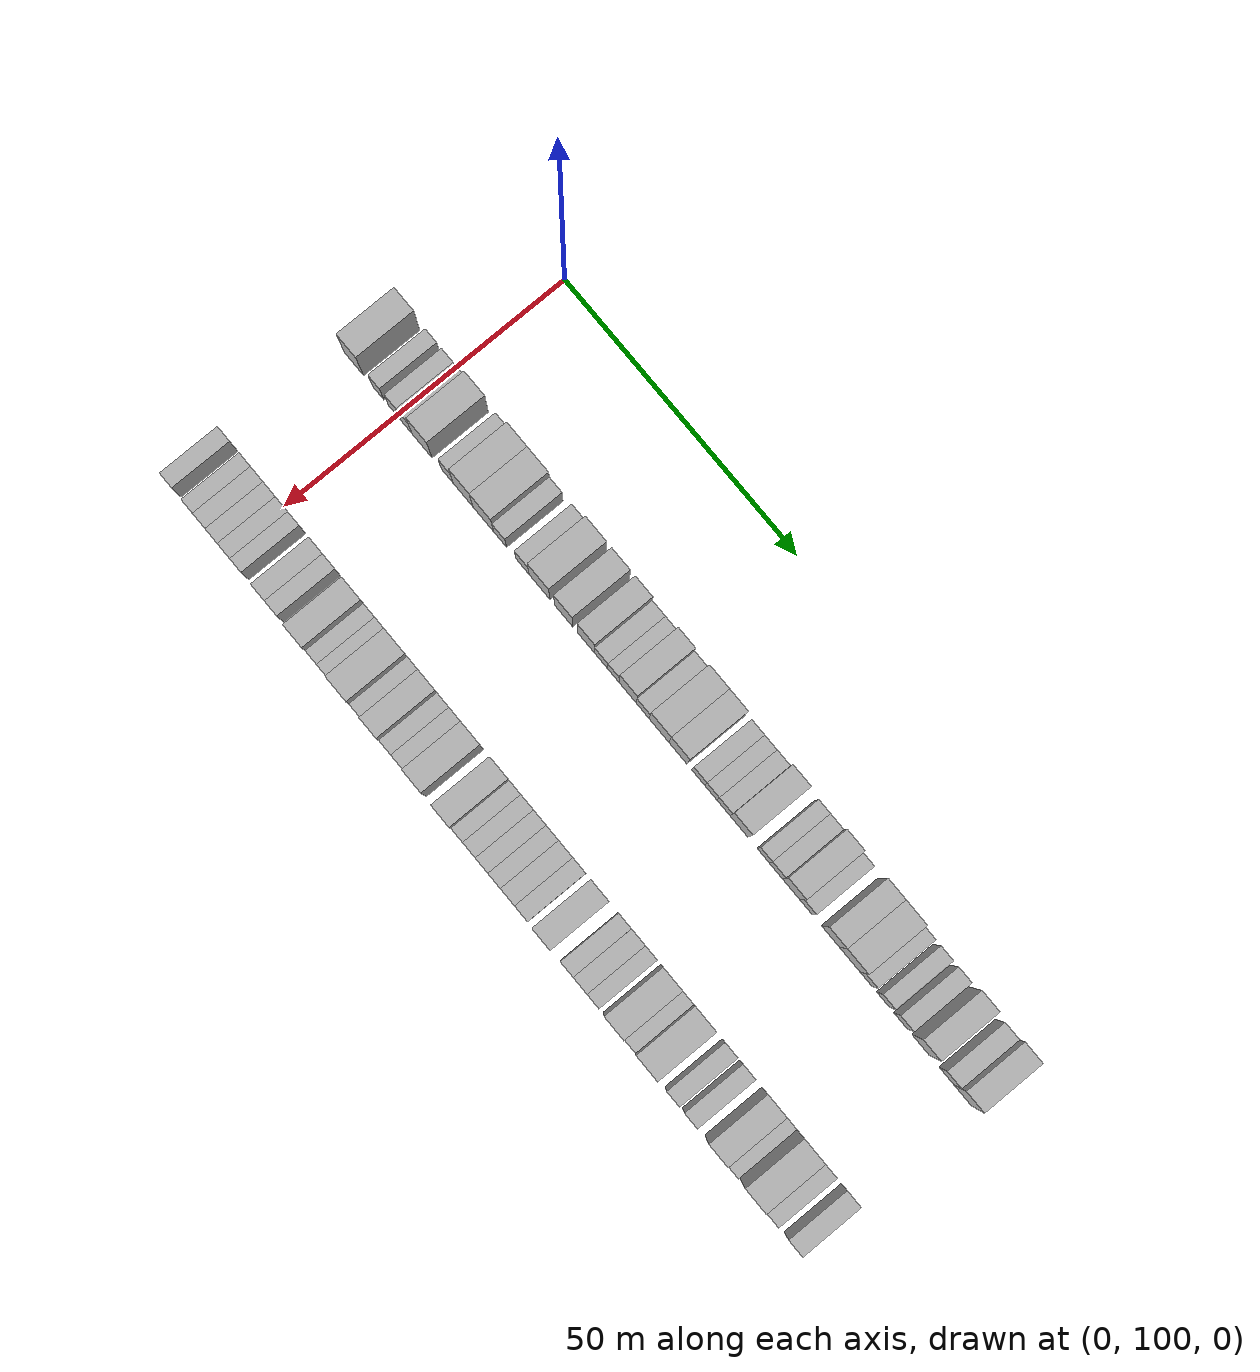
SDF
<sdf version="1.6">
 <world name="default">
  <model name="building_64">
   <static>1</static>
   <pose>25.0000 90.6085 0 0.000000 0.000000 0.000000</pose>
   <link name="link">
    <pose>0 0 4.50 0 0 0</pose>
    <collision name="collision"><geometry><box><size>10.0000 4.1637 9.0000</size></box></geometry></collision>
    <visual name="visual">
     <cast_shadows>0</cast_shadows>
     <geometry><box><size>10.0000 4.1637 9.0000</size></box></geometry>
     <material>
      <script>
       <uri>model://HANNAS_wall/materials/scripts</uri>
       <uri>model://HANNAS_wall/materials/textures</uri>
       <name>vrc/HANNAS_wall</name>
      </script>
     </material>
    </visual>
   </link>
  </model>
  <model name="building_65">
   <static>1</static>
   <pose>25.0000 95.9284 0 0.000000 0.000000 0.000000</pose>
   <link name="link">
    <pose>0 0 3.00 0 0 0</pose>
    <collision name="collision"><geometry><box><size>10.0000 2.4761 6.0000</size></box></geometry></collision>
    <visual name="visual">
     <cast_shadows>0</cast_shadows>
     <geometry><box><size>10.0000 2.4761 6.0000</size></box></geometry>
     <material>
      <script>
       <uri>model://HANNAS_wall/materials/scripts</uri>
       <uri>model://HANNAS_wall/materials/textures</uri>
       <name>vrc/HANNAS_wall</name>
      </script>
     </material>
    </visual>
   </link>
  </model>
  <model name="building_66">
   <static>1</static>
   <pose>25.0000 99.4283 0 0.000000 0.000000 0.000000</pose>
   <link name="link">
    <pose>0 0 3.00 0 0 0</pose>
    <collision name="collision"><geometry><box><size>10.0000 2.5238 6.0000</size></box></geometry></collision>
    <visual name="visual">
     <cast_shadows>0</cast_shadows>
     <geometry><box><size>10.0000 2.5238 6.0000</size></box></geometry>
     <material>
      <script>
       <uri>model://HANNAS_wall/materials/scripts</uri>
       <uri>model://HANNAS_wall/materials/textures</uri>
       <name>vrc/HANNAS_wall</name>
      </script>
     </material>
    </visual>
   </link>
  </model>
  <model name="building_67">
   <static>1</static>
   <pose>25.0000 101.9877 0 0.000000 0.000000 0.000000</pose>
   <link name="link">
    <pose>0 0 3.00 0 0 0</pose>
    <collision name="collision"><geometry><box><size>10.0000 2.5949 6.0000</size></box></geometry></collision>
    <visual name="visual">
     <cast_shadows>0</cast_shadows>
     <geometry><box><size>10.0000 2.5949 6.0000</size></box></geometry>
     <material>
      <script>
       <uri>model://HANNAS_wall/materials/scripts</uri>
       <uri>model://HANNAS_wall/materials/textures</uri>
       <name>vrc/HANNAS_wall</name>
      </script>
     </material>
    </visual>
   </link>
  </model>
  <model name="building_68">
   <static>1</static>
   <pose>25.0000 105.4654 0 0.000000 0.000000 0.000000</pose>
   <link name="link">
    <pose>0 0 4.50 0 0 0</pose>
    <collision name="collision"><geometry><box><size>10.0000 4.3605 9.0000</size></box></geometry></collision>
    <visual name="visual">
     <cast_shadows>0</cast_shadows>
     <geometry><box><size>10.0000 4.3605 9.0000</size></box></geometry>
     <material>
      <script>
       <uri>model://HANNAS_wall/materials/scripts</uri>
       <uri>model://HANNAS_wall/materials/textures</uri>
       <name>vrc/HANNAS_wall</name>
      </script>
     </material>
    </visual>
   </link>
  </model>
  <model name="building_69">
   <static>1</static>
   <pose>25.0000 110.9525 0 0.000000 0.000000 0.000000</pose>
   <link name="link">
    <pose>0 0 3.00 0 0 0</pose>
    <collision name="collision"><geometry><box><size>10.0000 2.6136 6.0000</size></box></geometry></collision>
    <visual name="visual">
     <cast_shadows>0</cast_shadows>
     <geometry><box><size>10.0000 2.6136 6.0000</size></box></geometry>
     <material>
      <script>
       <uri>model://HANNAS_wall/materials/scripts</uri>
       <uri>model://HANNAS_wall/materials/textures</uri>
       <name>vrc/HANNAS_wall</name>
      </script>
     </material>
    </visual>
   </link>
  </model>
  <model name="building_70">
   <static>1</static>
   <pose>25.0000 114.4066 0 0.000000 0.000000 0.000000</pose>
   <link name="link">
    <pose>0 0 4.50 0 0 0</pose>
    <collision name="collision"><geometry><box><size>10.0000 4.2947 9.0000</size></box></geometry></collision>
    <visual name="visual">
     <cast_shadows>0</cast_shadows>
     <geometry><box><size>10.0000 4.2947 9.0000</size></box></geometry>
     <material>
      <script>
       <uri>model://HANNAS_wall/materials/scripts</uri>
       <uri>model://HANNAS_wall/materials/textures</uri>
       <name>vrc/HANNAS_wall</name>
      </script>
     </material>
    </visual>
   </link>
  </model>
  <model name="building_71">
   <static>1</static>
   <pose>25.0000 118.7999 0 0.000000 0.000000 0.000000</pose>
   <link name="link">
    <pose>0 0 4.50 0 0 0</pose>
    <collision name="collision"><geometry><box><size>10.0000 4.4918 9.0000</size></box></geometry></collision>
    <visual name="visual">
     <cast_shadows>0</cast_shadows>
     <geometry><box><size>10.0000 4.4918 9.0000</size></box></geometry>
     <material>
      <script>
       <uri>model://HANNAS_wall/materials/scripts</uri>
       <uri>model://HANNAS_wall/materials/textures</uri>
       <name>vrc/HANNAS_wall</name>
      </script>
     </material>
    </visual>
   </link>
  </model>
  <model name="building_72">
   <static>1</static>
   <pose>25.0000 122.4167 0 0.000000 0.000000 0.000000</pose>
   <link name="link">
    <pose>0 0 3.00 0 0 0</pose>
    <collision name="collision"><geometry><box><size>10.0000 2.7419 6.0000</size></box></geometry></collision>
    <visual name="visual">
     <cast_shadows>0</cast_shadows>
     <geometry><box><size>10.0000 2.7419 6.0000</size></box></geometry>
     <material>
      <script>
       <uri>model://HANNAS_wall/materials/scripts</uri>
       <uri>model://HANNAS_wall/materials/textures</uri>
       <name>vrc/HANNAS_wall</name>
      </script>
     </material>
    </visual>
   </link>
  </model>
  <model name="building_73">
   <static>1</static>
   <pose>25.0000 127.2247 0 0.000000 0.000000 0.000000</pose>
   <link name="link">
    <pose>0 0 3.00 0 0 0</pose>
    <collision name="collision"><geometry><box><size>10.0000 2.8741 6.0000</size></box></geometry></collision>
    <visual name="visual">
     <cast_shadows>0</cast_shadows>
     <geometry><box><size>10.0000 2.8741 6.0000</size></box></geometry>
     <material>
      <script>
       <uri>model://HANNAS_wall/materials/scripts</uri>
       <uri>model://HANNAS_wall/materials/textures</uri>
       <name>vrc/HANNAS_wall</name>
      </script>
     </material>
    </visual>
   </link>
  </model>
  <model name="building_74">
   <static>1</static>
   <pose>25.0000 130.8982 0 0.000000 0.000000 0.000000</pose>
   <link name="link">
    <pose>0 0 4.50 0 0 0</pose>
    <collision name="collision"><geometry><box><size>10.0000 4.4728 9.0000</size></box></geometry></collision>
    <visual name="visual">
     <cast_shadows>0</cast_shadows>
     <geometry><box><size>10.0000 4.4728 9.0000</size></box></geometry>
     <material>
      <script>
       <uri>model://HANNAS_wall/materials/scripts</uri>
       <uri>model://HANNAS_wall/materials/textures</uri>
       <name>vrc/HANNAS_wall</name>
      </script>
     </material>
    </visual>
   </link>
  </model>
  <model name="building_75">
   <static>1</static>
   <pose>25.0000 136.0875 0 0.000000 0.000000 0.000000</pose>
   <link name="link">
    <pose>0 0 4.50 0 0 0</pose>
    <collision name="collision"><geometry><box><size>10.0000 3.9060 9.0000</size></box></geometry></collision>
    <visual name="visual">
     <cast_shadows>0</cast_shadows>
     <geometry><box><size>10.0000 3.9060 9.0000</size></box></geometry>
     <material>
      <script>
       <uri>model://HANNAS_wall/materials/scripts</uri>
       <uri>model://HANNAS_wall/materials/textures</uri>
       <name>vrc/HANNAS_wall</name>
      </script>
     </material>
    </visual>
   </link>
  </model>
  <model name="building_76">
   <static>1</static>
   <pose>25.0000 140.8769 0 0.000000 0.000000 0.000000</pose>
   <link name="link">
    <pose>0 0 4.50 0 0 0</pose>
    <collision name="collision"><geometry><box><size>10.0000 3.6727 9.0000</size></box></geometry></collision>
    <visual name="visual">
     <cast_shadows>0</cast_shadows>
     <geometry><box><size>10.0000 3.6727 9.0000</size></box></geometry>
     <material>
      <script>
       <uri>model://HANNAS_wall/materials/scripts</uri>
       <uri>model://HANNAS_wall/materials/textures</uri>
       <name>vrc/HANNAS_wall</name>
      </script>
     </material>
    </visual>
   </link>
  </model>
  <model name="building_77">
   <static>1</static>
   <pose>25.0000 144.0994 0 0.000000 0.000000 0.000000</pose>
   <link name="link">
    <pose>0 0 3.00 0 0 0</pose>
    <collision name="collision"><geometry><box><size>10.0000 2.7723 6.0000</size></box></geometry></collision>
    <visual name="visual">
     <cast_shadows>0</cast_shadows>
     <geometry><box><size>10.0000 2.7723 6.0000</size></box></geometry>
     <material>
      <script>
       <uri>model://HANNAS_wall/materials/scripts</uri>
       <uri>model://HANNAS_wall/materials/textures</uri>
       <name>vrc/HANNAS_wall</name>
      </script>
     </material>
    </visual>
   </link>
  </model>
  <model name="building_78">
   <static>1</static>
   <pose>25.0000 146.6974 0 0.000000 0.000000 0.000000</pose>
   <link name="link">
    <pose>0 0 3.00 0 0 0</pose>
    <collision name="collision"><geometry><box><size>10.0000 2.4238 6.0000</size></box></geometry></collision>
    <visual name="visual">
     <cast_shadows>0</cast_shadows>
     <geometry><box><size>10.0000 2.4238 6.0000</size></box></geometry>
     <material>
      <script>
       <uri>model://HANNAS_wall/materials/scripts</uri>
       <uri>model://HANNAS_wall/materials/textures</uri>
       <name>vrc/HANNAS_wall</name>
      </script>
     </material>
    </visual>
   </link>
  </model>
  <model name="building_79">
   <static>1</static>
   <pose>25.0000 149.7253 0 0.000000 0.000000 0.000000</pose>
   <link name="link">
    <pose>0 0 4.50 0 0 0</pose>
    <collision name="collision"><geometry><box><size>10.0000 3.6320 9.0000</size></box></geometry></collision>
    <visual name="visual">
     <cast_shadows>0</cast_shadows>
     <geometry><box><size>10.0000 3.6320 9.0000</size></box></geometry>
     <material>
      <script>
       <uri>model://HANNAS_wall/materials/scripts</uri>
       <uri>model://HANNAS_wall/materials/textures</uri>
       <name>vrc/HANNAS_wall</name>
      </script>
     </material>
    </visual>
   </link>
  </model>
  <model name="building_80">
   <static>1</static>
   <pose>25.0000 152.9375 0 0.000000 0.000000 0.000000</pose>
   <link name="link">
    <pose>0 0 3.00 0 0 0</pose>
    <collision name="collision"><geometry><box><size>10.0000 2.7925 6.0000</size></box></geometry></collision>
    <visual name="visual">
     <cast_shadows>0</cast_shadows>
     <geometry><box><size>10.0000 2.7925 6.0000</size></box></geometry>
     <material>
      <script>
       <uri>model://HANNAS_wall/materials/scripts</uri>
       <uri>model://HANNAS_wall/materials/textures</uri>
       <name>vrc/HANNAS_wall</name>
      </script>
     </material>
    </visual>
   </link>
  </model>
  <model name="building_81">
   <static>1</static>
   <pose>25.0000 156.4255 0 0.000000 0.000000 0.000000</pose>
   <link name="link">
    <pose>0 0 4.50 0 0 0</pose>
    <collision name="collision"><geometry><box><size>10.0000 4.1835 9.0000</size></box></geometry></collision>
    <visual name="visual">
     <cast_shadows>0</cast_shadows>
     <geometry><box><size>10.0000 4.1835 9.0000</size></box></geometry>
     <material>
      <script>
       <uri>model://HANNAS_wall/materials/scripts</uri>
       <uri>model://HANNAS_wall/materials/textures</uri>
       <name>vrc/HANNAS_wall</name>
      </script>
     </material>
    </visual>
   </link>
  </model>
  <model name="building_82">
   <static>1</static>
   <pose>25.0000 160.4530 0 0.000000 0.000000 0.000000</pose>
   <link name="link">
    <pose>0 0 4.50 0 0 0</pose>
    <collision name="collision"><geometry><box><size>10.0000 3.8715 9.0000</size></box></geometry></collision>
    <visual name="visual">
     <cast_shadows>0</cast_shadows>
     <geometry><box><size>10.0000 3.8715 9.0000</size></box></geometry>
     <material>
      <script>
       <uri>model://HANNAS_wall/materials/scripts</uri>
       <uri>model://HANNAS_wall/materials/textures</uri>
       <name>vrc/HANNAS_wall</name>
      </script>
     </material>
    </visual>
   </link>
  </model>
  <model name="building_83">
   <static>1</static>
   <pose>25.0000 164.7507 0 0.000000 0.000000 0.000000</pose>
   <link name="link">
    <pose>0 0 3.00 0 0 0</pose>
    <collision name="collision"><geometry><box><size>10.0000 2.7239 6.0000</size></box></geometry></collision>
    <visual name="visual">
     <cast_shadows>0</cast_shadows>
     <geometry><box><size>10.0000 2.7239 6.0000</size></box></geometry>
     <material>
      <script>
       <uri>model://HANNAS_wall/materials/scripts</uri>
       <uri>model://HANNAS_wall/materials/textures</uri>
       <name>vrc/HANNAS_wall</name>
      </script>
     </material>
    </visual>
   </link>
  </model>
  <model name="building_84">
   <static>1</static>
   <pose>25.0000 167.3876 0 0.000000 0.000000 0.000000</pose>
   <link name="link">
    <pose>0 0 3.00 0 0 0</pose>
    <collision name="collision"><geometry><box><size>10.0000 2.5499 6.0000</size></box></geometry></collision>
    <visual name="visual">
     <cast_shadows>0</cast_shadows>
     <geometry><box><size>10.0000 2.5499 6.0000</size></box></geometry>
     <material>
      <script>
       <uri>model://HANNAS_wall/materials/scripts</uri>
       <uri>model://HANNAS_wall/materials/textures</uri>
       <name>vrc/HANNAS_wall</name>
      </script>
     </material>
    </visual>
   </link>
  </model>
  <model name="building_85">
   <static>1</static>
   <pose>25.0000 170.0419 0 0.000000 0.000000 0.000000</pose>
   <link name="link">
    <pose>0 0 3.00 0 0 0</pose>
    <collision name="collision"><geometry><box><size>10.0000 2.7588 6.0000</size></box></geometry></collision>
    <visual name="visual">
     <cast_shadows>0</cast_shadows>
     <geometry><box><size>10.0000 2.7588 6.0000</size></box></geometry>
     <material>
      <script>
       <uri>model://HANNAS_wall/materials/scripts</uri>
       <uri>model://HANNAS_wall/materials/textures</uri>
       <name>vrc/HANNAS_wall</name>
      </script>
     </material>
    </visual>
   </link>
  </model>
  <model name="building_86">
   <static>1</static>
   <pose>25.0000 173.3113 0 0.000000 0.000000 0.000000</pose>
   <link name="link">
    <pose>0 0 4.50 0 0 0</pose>
    <collision name="collision"><geometry><box><size>10.0000 3.7800 9.0000</size></box></geometry></collision>
    <visual name="visual">
     <cast_shadows>0</cast_shadows>
     <geometry><box><size>10.0000 3.7800 9.0000</size></box></geometry>
     <material>
      <script>
       <uri>model://HANNAS_wall/materials/scripts</uri>
       <uri>model://HANNAS_wall/materials/textures</uri>
       <name>vrc/HANNAS_wall</name>
      </script>
     </material>
    </visual>
   </link>
  </model>
  <model name="building_87">
   <static>1</static>
   <pose>25.0000 178.4202 0 0.000000 0.000000 0.000000</pose>
   <link name="link">
    <pose>0 0 3.00 0 0 0</pose>
    <collision name="collision"><geometry><box><size>10.0000 2.4378 6.0000</size></box></geometry></collision>
    <visual name="visual">
     <cast_shadows>0</cast_shadows>
     <geometry><box><size>10.0000 2.4378 6.0000</size></box></geometry>
     <material>
      <script>
       <uri>model://HANNAS_wall/materials/scripts</uri>
       <uri>model://HANNAS_wall/materials/textures</uri>
       <name>vrc/HANNAS_wall</name>
      </script>
     </material>
    </visual>
   </link>
  </model>
  <model name="building_88">
   <static>1</static>
   <pose>25.0000 181.0254 0 0.000000 0.000000 0.000000</pose>
   <link name="link">
    <pose>0 0 3.00 0 0 0</pose>
    <collision name="collision"><geometry><box><size>10.0000 2.7725 6.0000</size></box></geometry></collision>
    <visual name="visual">
     <cast_shadows>0</cast_shadows>
     <geometry><box><size>10.0000 2.7725 6.0000</size></box></geometry>
     <material>
      <script>
       <uri>model://HANNAS_wall/materials/scripts</uri>
       <uri>model://HANNAS_wall/materials/textures</uri>
       <name>vrc/HANNAS_wall</name>
      </script>
     </material>
    </visual>
   </link>
  </model>
  <model name="building_89">
   <static>1</static>
   <pose>25.0000 184.2746 0 0.000000 0.000000 0.000000</pose>
   <link name="link">
    <pose>0 0 4.50 0 0 0</pose>
    <collision name="collision"><geometry><box><size>10.0000 3.7258 9.0000</size></box></geometry></collision>
    <visual name="visual">
     <cast_shadows>0</cast_shadows>
     <geometry><box><size>10.0000 3.7258 9.0000</size></box></geometry>
     <material>
      <script>
       <uri>model://HANNAS_wall/materials/scripts</uri>
       <uri>model://HANNAS_wall/materials/textures</uri>
       <name>vrc/HANNAS_wall</name>
      </script>
     </material>
    </visual>
   </link>
  </model>
  <model name="building_90">
   <static>1</static>
   <pose>25.0000 187.4155 0 0.000000 0.000000 0.000000</pose>
   <link name="link">
    <pose>0 0 3.00 0 0 0</pose>
    <collision name="collision"><geometry><box><size>10.0000 2.5561 6.0000</size></box></geometry></collision>
    <visual name="visual">
     <cast_shadows>0</cast_shadows>
     <geometry><box><size>10.0000 2.5561 6.0000</size></box></geometry>
     <material>
      <script>
       <uri>model://HANNAS_wall/materials/scripts</uri>
       <uri>model://HANNAS_wall/materials/textures</uri>
       <name>vrc/HANNAS_wall</name>
      </script>
     </material>
    </visual>
   </link>
  </model>
  <model name="building_91">
   <static>1</static>
   <pose>25.0000 192.5272 0 0.000000 0.000000 0.000000</pose>
   <link name="link">
    <pose>0 0 4.50 0 0 0</pose>
    <collision name="collision"><geometry><box><size>10.0000 3.6672 9.0000</size></box></geometry></collision>
    <visual name="visual">
     <cast_shadows>0</cast_shadows>
     <geometry><box><size>10.0000 3.6672 9.0000</size></box></geometry>
     <material>
      <script>
       <uri>model://HANNAS_wall/materials/scripts</uri>
       <uri>model://HANNAS_wall/materials/textures</uri>
       <name>vrc/HANNAS_wall</name>
      </script>
     </material>
    </visual>
   </link>
  </model>
  <model name="building_92">
   <static>1</static>
   <pose>25.0000 196.5375 0 0.000000 0.000000 0.000000</pose>
   <link name="link">
    <pose>0 0 4.50 0 0 0</pose>
    <collision name="collision"><geometry><box><size>10.0000 4.3534 9.0000</size></box></geometry></collision>
    <visual name="visual">
     <cast_shadows>0</cast_shadows>
     <geometry><box><size>10.0000 4.3534 9.0000</size></box></geometry>
     <material>
      <script>
       <uri>model://HANNAS_wall/materials/scripts</uri>
       <uri>model://HANNAS_wall/materials/textures</uri>
       <name>vrc/HANNAS_wall</name>
      </script>
     </material>
    </visual>
   </link>
  </model>
  <model name="building_93">
   <static>1</static>
   <pose>25.0000 199.9641 0 0.000000 0.000000 0.000000</pose>
   <link name="link">
    <pose>0 0 3.00 0 0 0</pose>
    <collision name="collision"><geometry><box><size>10.0000 2.5000 6.0000</size></box></geometry></collision>
    <visual name="visual">
     <cast_shadows>0</cast_shadows>
     <geometry><box><size>10.0000 2.5000 6.0000</size></box></geometry>
     <material>
      <script>
       <uri>model://HANNAS_wall/materials/scripts</uri>
       <uri>model://HANNAS_wall/materials/textures</uri>
       <name>vrc/HANNAS_wall</name>
      </script>
     </material>
    </visual>
   </link>
  </model>
  <model name="building_94">
   <static>1</static>
   <pose>25.0000 203.5080 0 0.000000 0.000000 0.000000</pose>
   <link name="link">
    <pose>0 0 3.00 0 0 0</pose>
    <collision name="collision"><geometry><box><size>10.0000 2.5877 6.0000</size></box></geometry></collision>
    <visual name="visual">
     <cast_shadows>0</cast_shadows>
     <geometry><box><size>10.0000 2.5877 6.0000</size></box></geometry>
     <material>
      <script>
       <uri>model://HANNAS_wall/materials/scripts</uri>
       <uri>model://HANNAS_wall/materials/textures</uri>
       <name>vrc/HANNAS_wall</name>
      </script>
     </material>
    </visual>
   </link>
  </model>
  <model name="building_95">
   <static>1</static>
   <pose>25.0000 207.1830 0 0.000000 0.000000 0.000000</pose>
   <link name="link">
    <pose>0 0 3.00 0 0 0</pose>
    <collision name="collision"><geometry><box><size>10.0000 2.7625 6.0000</size></box></geometry></collision>
    <visual name="visual">
     <cast_shadows>0</cast_shadows>
     <geometry><box><size>10.0000 2.7625 6.0000</size></box></geometry>
     <material>
      <script>
       <uri>model://HANNAS_wall/materials/scripts</uri>
       <uri>model://HANNAS_wall/materials/textures</uri>
       <name>vrc/HANNAS_wall</name>
      </script>
     </material>
    </visual>
   </link>
  </model>
  <model name="building_96">
   <static>1</static>
   <pose>25.0000 211.3825 0 0.000000 0.000000 0.000000</pose>
   <link name="link">
    <pose>0 0 4.50 0 0 0</pose>
    <collision name="collision"><geometry><box><size>10.0000 3.6365 9.0000</size></box></geometry></collision>
    <visual name="visual">
     <cast_shadows>0</cast_shadows>
     <geometry><box><size>10.0000 3.6365 9.0000</size></box></geometry>
     <material>
      <script>
       <uri>model://HANNAS_wall/materials/scripts</uri>
       <uri>model://HANNAS_wall/materials/textures</uri>
       <name>vrc/HANNAS_wall</name>
      </script>
     </material>
    </visual>
   </link>
  </model>
  <model name="building_97">
   <static>1</static>
   <pose>25.0000 216.6824 0 0.000000 0.000000 0.000000</pose>
   <link name="link">
    <pose>0 0 3.00 0 0 0</pose>
    <collision name="collision"><geometry><box><size>10.0000 2.9632 6.0000</size></box></geometry></collision>
    <visual name="visual">
     <cast_shadows>0</cast_shadows>
     <geometry><box><size>10.0000 2.9632 6.0000</size></box></geometry>
     <material>
      <script>
       <uri>model://HANNAS_wall/materials/scripts</uri>
       <uri>model://HANNAS_wall/materials/textures</uri>
       <name>vrc/HANNAS_wall</name>
      </script>
     </material>
    </visual>
   </link>
  </model>
  <model name="building_98">
   <static>1</static>
   <pose>25.0000 219.9802 0 0.000000 0.000000 0.000000</pose>
   <link name="link">
    <pose>0 0 4.50 0 0 0</pose>
    <collision name="collision"><geometry><box><size>10.0000 3.6325 9.0000</size></box></geometry></collision>
    <visual name="visual">
     <cast_shadows>0</cast_shadows>
     <geometry><box><size>10.0000 3.6325 9.0000</size></box></geometry>
     <material>
      <script>
       <uri>model://HANNAS_wall/materials/scripts</uri>
       <uri>model://HANNAS_wall/materials/textures</uri>
       <name>vrc/HANNAS_wall</name>
      </script>
     </material>
    </visual>
   </link>
  </model>
  <model name="building_181">
   <static>1</static>
   <pose>55.0000 88.5930 0 0.000000 0.000000 0.000000</pose>
   <link name="link">
    <pose>0 0 3.00 0 0 0</pose>
    <collision name="collision"><geometry><box><size>10.0000 2.6567 6.0000</size></box></geometry></collision>
    <visual name="visual">
     <cast_shadows>0</cast_shadows>
     <geometry><box><size>10.0000 2.6567 6.0000</size></box></geometry>
     <material>
      <script>
       <uri>model://HANNAS_wall/materials/scripts</uri>
       <uri>model://HANNAS_wall/materials/textures</uri>
       <name>vrc/HANNAS_wall</name>
      </script>
     </material>
    </visual>
   </link>
  </model>
  <model name="building_182">
   <static>1</static>
   <pose>55.0000 93.1367 0 0.000000 0.000000 0.000000</pose>
   <link name="link">
    <pose>0 0 3.00 0 0 0</pose>
    <collision name="collision"><geometry><box><size>10.0000 2.4307 6.0000</size></box></geometry></collision>
    <visual name="visual">
     <cast_shadows>0</cast_shadows>
     <geometry><box><size>10.0000 2.4307 6.0000</size></box></geometry>
     <material>
      <script>
       <uri>model://HANNAS_wall/materials/scripts</uri>
       <uri>model://HANNAS_wall/materials/textures</uri>
       <name>vrc/HANNAS_wall</name>
      </script>
     </material>
    </visual>
   </link>
  </model>
  <model name="building_183">
   <static>1</static>
   <pose>55.0000 95.7029 0 0.000000 0.000000 0.000000</pose>
   <link name="link">
    <pose>0 0 3.00 0 0 0</pose>
    <collision name="collision"><geometry><box><size>10.0000 2.7017 6.0000</size></box></geometry></collision>
    <visual name="visual">
     <cast_shadows>0</cast_shadows>
     <geometry><box><size>10.0000 2.7017 6.0000</size></box></geometry>
     <material>
      <script>
       <uri>model://HANNAS_wall/materials/scripts</uri>
       <uri>model://HANNAS_wall/materials/textures</uri>
       <name>vrc/HANNAS_wall</name>
      </script>
     </material>
    </visual>
   </link>
  </model>
  <model name="building_184">
   <static>1</static>
   <pose>55.0000 98.3659 0 0.000000 0.000000 0.000000</pose>
   <link name="link">
    <pose>0 0 3.00 0 0 0</pose>
    <collision name="collision"><geometry><box><size>10.0000 2.6243 6.0000</size></box></geometry></collision>
    <visual name="visual">
     <cast_shadows>0</cast_shadows>
     <geometry><box><size>10.0000 2.6243 6.0000</size></box></geometry>
     <material>
      <script>
       <uri>model://HANNAS_wall/materials/scripts</uri>
       <uri>model://HANNAS_wall/materials/textures</uri>
       <name>vrc/HANNAS_wall</name>
      </script>
     </material>
    </visual>
   </link>
  </model>
  <model name="building_185">
   <static>1</static>
   <pose>55.0000 101.0020 0 0.000000 0.000000 0.000000</pose>
   <link name="link">
    <pose>0 0 3.00 0 0 0</pose>
    <collision name="collision"><geometry><box><size>10.0000 2.6480 6.0000</size></box></geometry></collision>
    <visual name="visual">
     <cast_shadows>0</cast_shadows>
     <geometry><box><size>10.0000 2.6480 6.0000</size></box></geometry>
     <material>
      <script>
       <uri>model://HANNAS_wall/materials/scripts</uri>
       <uri>model://HANNAS_wall/materials/textures</uri>
       <name>vrc/HANNAS_wall</name>
      </script>
     </material>
    </visual>
   </link>
  </model>
  <model name="building_186">
   <static>1</static>
   <pose>55.0000 103.5491 0 0.000000 0.000000 0.000000</pose>
   <link name="link">
    <pose>0 0 3.00 0 0 0</pose>
    <collision name="collision"><geometry><box><size>10.0000 2.4462 6.0000</size></box></geometry></collision>
    <visual name="visual">
     <cast_shadows>0</cast_shadows>
     <geometry><box><size>10.0000 2.4462 6.0000</size></box></geometry>
     <material>
      <script>
       <uri>model://HANNAS_wall/materials/scripts</uri>
       <uri>model://HANNAS_wall/materials/textures</uri>
       <name>vrc/HANNAS_wall</name>
      </script>
     </material>
    </visual>
   </link>
  </model>
  <model name="building_187">
   <static>1</static>
   <pose>55.0000 108.2516 0 0.000000 0.000000 0.000000</pose>
   <link name="link">
    <pose>0 0 3.00 0 0 0</pose>
    <collision name="collision"><geometry><box><size>10.0000 2.9588 6.0000</size></box></geometry></collision>
    <visual name="visual">
     <cast_shadows>0</cast_shadows>
     <geometry><box><size>10.0000 2.9588 6.0000</size></box></geometry>
     <material>
      <script>
       <uri>model://HANNAS_wall/materials/scripts</uri>
       <uri>model://HANNAS_wall/materials/textures</uri>
       <name>vrc/HANNAS_wall</name>
      </script>
     </material>
    </visual>
   </link>
  </model>
  <model name="building_188">
   <static>1</static>
   <pose>55.0000 111.0674 0 0.000000 0.000000 0.000000</pose>
   <link name="link">
    <pose>0 0 3.00 0 0 0</pose>
    <collision name="collision"><geometry><box><size>10.0000 2.6728 6.0000</size></box></geometry></collision>
    <visual name="visual">
     <cast_shadows>0</cast_shadows>
     <geometry><box><size>10.0000 2.6728 6.0000</size></box></geometry>
     <material>
      <script>
       <uri>model://HANNAS_wall/materials/scripts</uri>
       <uri>model://HANNAS_wall/materials/textures</uri>
       <name>vrc/HANNAS_wall</name>
      </script>
     </material>
    </visual>
   </link>
  </model>
  <model name="building_189">
   <static>1</static>
   <pose>55.0000 116.4096 0 0.000000 0.000000 0.000000</pose>
   <link name="link">
    <pose>0 0 4.50 0 0 0</pose>
    <collision name="collision"><geometry><box><size>10.0000 4.0116 9.0000</size></box></geometry></collision>
    <visual name="visual">
     <cast_shadows>0</cast_shadows>
     <geometry><box><size>10.0000 4.0116 9.0000</size></box></geometry>
     <material>
      <script>
       <uri>model://HANNAS_wall/materials/scripts</uri>
       <uri>model://HANNAS_wall/materials/textures</uri>
       <name>vrc/HANNAS_wall</name>
      </script>
     </material>
    </visual>
   </link>
  </model>
  <model name="building_190">
   <static>1</static>
   <pose>55.0000 119.6155 0 0.000000 0.000000 0.000000</pose>
   <link name="link">
    <pose>0 0 3.00 0 0 0</pose>
    <collision name="collision"><geometry><box><size>10.0000 2.4001 6.0000</size></box></geometry></collision>
    <visual name="visual">
     <cast_shadows>0</cast_shadows>
     <geometry><box><size>10.0000 2.4001 6.0000</size></box></geometry>
     <material>
      <script>
       <uri>model://HANNAS_wall/materials/scripts</uri>
       <uri>model://HANNAS_wall/materials/textures</uri>
       <name>vrc/HANNAS_wall</name>
      </script>
     </material>
    </visual>
   </link>
  </model>
  <model name="building_191">
   <static>1</static>
   <pose>55.0000 122.0386 0 0.000000 0.000000 0.000000</pose>
   <link name="link">
    <pose>0 0 3.00 0 0 0</pose>
    <collision name="collision"><geometry><box><size>10.0000 2.4461 6.0000</size></box></geometry></collision>
    <visual name="visual">
     <cast_shadows>0</cast_shadows>
     <geometry><box><size>10.0000 2.4461 6.0000</size></box></geometry>
     <material>
      <script>
       <uri>model://HANNAS_wall/materials/scripts</uri>
       <uri>model://HANNAS_wall/materials/textures</uri>
       <name>vrc/HANNAS_wall</name>
      </script>
     </material>
    </visual>
   </link>
  </model>
  <model name="building_192">
   <static>1</static>
   <pose>55.0000 125.4726 0 0.000000 0.000000 0.000000</pose>
   <link name="link">
    <pose>0 0 4.50 0 0 0</pose>
    <collision name="collision"><geometry><box><size>10.0000 4.4219 9.0000</size></box></geometry></collision>
    <visual name="visual">
     <cast_shadows>0</cast_shadows>
     <geometry><box><size>10.0000 4.4219 9.0000</size></box></geometry>
     <material>
      <script>
       <uri>model://HANNAS_wall/materials/scripts</uri>
       <uri>model://HANNAS_wall/materials/textures</uri>
       <name>vrc/HANNAS_wall</name>
      </script>
     </material>
    </visual>
   </link>
  </model>
  <model name="building_193">
   <static>1</static>
   <pose>55.0000 129.0188 0 0.000000 0.000000 0.000000</pose>
   <link name="link">
    <pose>0 0 3.00 0 0 0</pose>
    <collision name="collision"><geometry><box><size>10.0000 2.6704 6.0000</size></box></geometry></collision>
    <visual name="visual">
     <cast_shadows>0</cast_shadows>
     <geometry><box><size>10.0000 2.6704 6.0000</size></box></geometry>
     <material>
      <script>
       <uri>model://HANNAS_wall/materials/scripts</uri>
       <uri>model://HANNAS_wall/materials/textures</uri>
       <name>vrc/HANNAS_wall</name>
      </script>
     </material>
    </visual>
   </link>
  </model>
  <model name="building_194">
   <static>1</static>
   <pose>55.0000 132.1588 0 0.000000 0.000000 0.000000</pose>
   <link name="link">
    <pose>0 0 4.50 0 0 0</pose>
    <collision name="collision"><geometry><box><size>10.0000 3.6097 9.0000</size></box></geometry></collision>
    <visual name="visual">
     <cast_shadows>0</cast_shadows>
     <geometry><box><size>10.0000 3.6097 9.0000</size></box></geometry>
     <material>
      <script>
       <uri>model://HANNAS_wall/materials/scripts</uri>
       <uri>model://HANNAS_wall/materials/textures</uri>
       <name>vrc/HANNAS_wall</name>
      </script>
     </material>
    </visual>
   </link>
  </model>
  <model name="building_195">
   <static>1</static>
   <pose>55.0000 135.2268 0 0.000000 0.000000 0.000000</pose>
   <link name="link">
    <pose>0 0 3.00 0 0 0</pose>
    <collision name="collision"><geometry><box><size>10.0000 2.5262 6.0000</size></box></geometry></collision>
    <visual name="visual">
     <cast_shadows>0</cast_shadows>
     <geometry><box><size>10.0000 2.5262 6.0000</size></box></geometry>
     <material>
      <script>
       <uri>model://HANNAS_wall/materials/scripts</uri>
       <uri>model://HANNAS_wall/materials/textures</uri>
       <name>vrc/HANNAS_wall</name>
      </script>
     </material>
    </visual>
   </link>
  </model>
  <model name="building_196">
   <static>1</static>
   <pose>55.0000 137.8588 0 0.000000 0.000000 0.000000</pose>
   <link name="link">
    <pose>0 0 3.00 0 0 0</pose>
    <collision name="collision"><geometry><box><size>10.0000 2.7379 6.0000</size></box></geometry></collision>
    <visual name="visual">
     <cast_shadows>0</cast_shadows>
     <geometry><box><size>10.0000 2.7379 6.0000</size></box></geometry>
     <material>
      <script>
       <uri>model://HANNAS_wall/materials/scripts</uri>
       <uri>model://HANNAS_wall/materials/textures</uri>
       <name>vrc/HANNAS_wall</name>
      </script>
     </material>
    </visual>
   </link>
  </model>
  <model name="building_197">
   <static>1</static>
   <pose>55.0000 141.2490 0 0.000000 0.000000 0.000000</pose>
   <link name="link">
    <pose>0 0 4.50 0 0 0</pose>
    <collision name="collision"><geometry><box><size>10.0000 4.0424 9.0000</size></box></geometry></collision>
    <visual name="visual">
     <cast_shadows>0</cast_shadows>
     <geometry><box><size>10.0000 4.0424 9.0000</size></box></geometry>
     <material>
      <script>
       <uri>model://HANNAS_wall/materials/scripts</uri>
       <uri>model://HANNAS_wall/materials/textures</uri>
       <name>vrc/HANNAS_wall</name>
      </script>
     </material>
    </visual>
   </link>
  </model>
  <model name="building_198">
   <static>1</static>
   <pose>55.0000 147.1892 0 0.000000 0.000000 0.000000</pose>
   <link name="link">
    <pose>0 0 4.50 0 0 0</pose>
    <collision name="collision"><geometry><box><size>10.0000 3.8381 9.0000</size></box></geometry></collision>
    <visual name="visual">
     <cast_shadows>0</cast_shadows>
     <geometry><box><size>10.0000 3.8381 9.0000</size></box></geometry>
     <material>
      <script>
       <uri>model://HANNAS_wall/materials/scripts</uri>
       <uri>model://HANNAS_wall/materials/textures</uri>
       <name>vrc/HANNAS_wall</name>
      </script>
     </material>
    </visual>
   </link>
  </model>
  <model name="building_199">
   <static>1</static>
   <pose>55.0000 150.3296 0 0.000000 0.000000 0.000000</pose>
   <link name="link">
    <pose>0 0 3.00 0 0 0</pose>
    <collision name="collision"><geometry><box><size>10.0000 2.4427 6.0000</size></box></geometry></collision>
    <visual name="visual">
     <cast_shadows>0</cast_shadows>
     <geometry><box><size>10.0000 2.4427 6.0000</size></box></geometry>
     <material>
      <script>
       <uri>model://HANNAS_wall/materials/scripts</uri>
       <uri>model://HANNAS_wall/materials/textures</uri>
       <name>vrc/HANNAS_wall</name>
      </script>
     </material>
    </visual>
   </link>
  </model>
  <model name="building_200">
   <static>1</static>
   <pose>55.0000 152.8754 0 0.000000 0.000000 0.000000</pose>
   <link name="link">
    <pose>0 0 3.00 0 0 0</pose>
    <collision name="collision"><geometry><box><size>10.0000 2.6489 6.0000</size></box></geometry></collision>
    <visual name="visual">
     <cast_shadows>0</cast_shadows>
     <geometry><box><size>10.0000 2.6489 6.0000</size></box></geometry>
     <material>
      <script>
       <uri>model://HANNAS_wall/materials/scripts</uri>
       <uri>model://HANNAS_wall/materials/textures</uri>
       <name>vrc/HANNAS_wall</name>
      </script>
     </material>
    </visual>
   </link>
  </model>
  <model name="building_201">
   <static>1</static>
   <pose>55.0000 155.5192 0 0.000000 0.000000 0.000000</pose>
   <link name="link">
    <pose>0 0 3.00 0 0 0</pose>
    <collision name="collision"><geometry><box><size>10.0000 2.6388 6.0000</size></box></geometry></collision>
    <visual name="visual">
     <cast_shadows>0</cast_shadows>
     <geometry><box><size>10.0000 2.6388 6.0000</size></box></geometry>
     <material>
      <script>
       <uri>model://HANNAS_wall/materials/scripts</uri>
       <uri>model://HANNAS_wall/materials/textures</uri>
       <name>vrc/HANNAS_wall</name>
      </script>
     </material>
    </visual>
   </link>
  </model>
  <model name="building_202">
   <static>1</static>
   <pose>55.0000 158.1406 0 0.000000 0.000000 0.000000</pose>
   <link name="link">
    <pose>0 0 3.00 0 0 0</pose>
    <collision name="collision"><geometry><box><size>10.0000 2.6041 6.0000</size></box></geometry></collision>
    <visual name="visual">
     <cast_shadows>0</cast_shadows>
     <geometry><box><size>10.0000 2.6041 6.0000</size></box></geometry>
     <material>
      <script>
       <uri>model://HANNAS_wall/materials/scripts</uri>
       <uri>model://HANNAS_wall/materials/textures</uri>
       <name>vrc/HANNAS_wall</name>
      </script>
     </material>
    </visual>
   </link>
  </model>
  <model name="building_203">
   <static>1</static>
   <pose>55.0000 160.9162 0 0.000000 0.000000 0.000000</pose>
   <link name="link">
    <pose>0 0 3.00 0 0 0</pose>
    <collision name="collision"><geometry><box><size>10.0000 2.9471 6.0000</size></box></geometry></collision>
    <visual name="visual">
     <cast_shadows>0</cast_shadows>
     <geometry><box><size>10.0000 2.9471 6.0000</size></box></geometry>
     <material>
      <script>
       <uri>model://HANNAS_wall/materials/scripts</uri>
       <uri>model://HANNAS_wall/materials/textures</uri>
       <name>vrc/HANNAS_wall</name>
      </script>
     </material>
    </visual>
   </link>
  </model>
  <model name="building_204">
   <static>1</static>
   <pose>55.0000 163.7479 0 0.000000 0.000000 0.000000</pose>
   <link name="link">
    <pose>0 0 3.00 0 0 0</pose>
    <collision name="collision"><geometry><box><size>10.0000 2.7162 6.0000</size></box></geometry></collision>
    <visual name="visual">
     <cast_shadows>0</cast_shadows>
     <geometry><box><size>10.0000 2.7162 6.0000</size></box></geometry>
     <material>
      <script>
       <uri>model://HANNAS_wall/materials/scripts</uri>
       <uri>model://HANNAS_wall/materials/textures</uri>
       <name>vrc/HANNAS_wall</name>
      </script>
     </material>
    </visual>
   </link>
  </model>
  <model name="building_205">
   <static>1</static>
   <pose>55.0000 167.9933 0 0.000000 0.000000 0.000000</pose>
   <link name="link">
    <pose>0 0 4.50 0 0 0</pose>
    <collision name="collision"><geometry><box><size>10.0000 3.7747 9.0000</size></box></geometry></collision>
    <visual name="visual">
     <cast_shadows>0</cast_shadows>
     <geometry><box><size>10.0000 3.7747 9.0000</size></box></geometry>
     <material>
      <script>
       <uri>model://HANNAS_wall/materials/scripts</uri>
       <uri>model://HANNAS_wall/materials/textures</uri>
       <name>vrc/HANNAS_wall</name>
      </script>
     </material>
    </visual>
   </link>
  </model>
  <model name="building_206">
   <static>1</static>
   <pose>55.0000 173.2125 0 0.000000 0.000000 0.000000</pose>
   <link name="link">
    <pose>0 0 3.00 0 0 0</pose>
    <collision name="collision"><geometry><box><size>10.0000 2.6637 6.0000</size></box></geometry></collision>
    <visual name="visual">
     <cast_shadows>0</cast_shadows>
     <geometry><box><size>10.0000 2.6637 6.0000</size></box></geometry>
     <material>
      <script>
       <uri>model://HANNAS_wall/materials/scripts</uri>
       <uri>model://HANNAS_wall/materials/textures</uri>
       <name>vrc/HANNAS_wall</name>
      </script>
     </material>
    </visual>
   </link>
  </model>
  <model name="building_207">
   <static>1</static>
   <pose>55.0000 175.9850 0 0.000000 0.000000 0.000000</pose>
   <link name="link">
    <pose>0 0 3.00 0 0 0</pose>
    <collision name="collision"><geometry><box><size>10.0000 2.8812 6.0000</size></box></geometry></collision>
    <visual name="visual">
     <cast_shadows>0</cast_shadows>
     <geometry><box><size>10.0000 2.8812 6.0000</size></box></geometry>
     <material>
      <script>
       <uri>model://HANNAS_wall/materials/scripts</uri>
       <uri>model://HANNAS_wall/materials/textures</uri>
       <name>vrc/HANNAS_wall</name>
      </script>
     </material>
    </visual>
   </link>
  </model>
  <model name="building_208">
   <static>1</static>
   <pose>55.0000 178.6568 0 0.000000 0.000000 0.000000</pose>
   <link name="link">
    <pose>0 0 3.00 0 0 0</pose>
    <collision name="collision"><geometry><box><size>10.0000 2.4624 6.0000</size></box></geometry></collision>
    <visual name="visual">
     <cast_shadows>0</cast_shadows>
     <geometry><box><size>10.0000 2.4624 6.0000</size></box></geometry>
     <material>
      <script>
       <uri>model://HANNAS_wall/materials/scripts</uri>
       <uri>model://HANNAS_wall/materials/textures</uri>
       <name>vrc/HANNAS_wall</name>
      </script>
     </material>
    </visual>
   </link>
  </model>
  <model name="building_209">
   <static>1</static>
   <pose>55.0000 182.9075 0 0.000000 0.000000 0.000000</pose>
   <link name="link">
    <pose>0 0 4.50 0 0 0</pose>
    <collision name="collision"><geometry><box><size>10.0000 4.0389 9.0000</size></box></geometry></collision>
    <visual name="visual">
     <cast_shadows>0</cast_shadows>
     <geometry><box><size>10.0000 4.0389 9.0000</size></box></geometry>
     <material>
      <script>
       <uri>model://HANNAS_wall/materials/scripts</uri>
       <uri>model://HANNAS_wall/materials/textures</uri>
       <name>vrc/HANNAS_wall</name>
      </script>
     </material>
    </visual>
   </link>
  </model>
  <model name="building_210">
   <static>1</static>
   <pose>55.0000 186.1646 0 0.000000 0.000000 0.000000</pose>
   <link name="link">
    <pose>0 0 3.00 0 0 0</pose>
    <collision name="collision"><geometry><box><size>10.0000 2.4752 6.0000</size></box></geometry></collision>
    <visual name="visual">
     <cast_shadows>0</cast_shadows>
     <geometry><box><size>10.0000 2.4752 6.0000</size></box></geometry>
     <material>
      <script>
       <uri>model://HANNAS_wall/materials/scripts</uri>
       <uri>model://HANNAS_wall/materials/textures</uri>
       <name>vrc/HANNAS_wall</name>
      </script>
     </material>
    </visual>
   </link>
  </model>
  <model name="building_211">
   <static>1</static>
   <pose>55.0000 189.5959 0 0.000000 0.000000 0.000000</pose>
   <link name="link">
    <pose>0 0 4.50 0 0 0</pose>
    <collision name="collision"><geometry><box><size>10.0000 4.3875 9.0000</size></box></geometry></collision>
    <visual name="visual">
     <cast_shadows>0</cast_shadows>
     <geometry><box><size>10.0000 4.3875 9.0000</size></box></geometry>
     <material>
      <script>
       <uri>model://HANNAS_wall/materials/scripts</uri>
       <uri>model://HANNAS_wall/materials/textures</uri>
       <name>vrc/HANNAS_wall</name>
      </script>
     </material>
    </visual>
   </link>
  </model>
  <model name="building_212">
   <static>1</static>
   <pose>55.0000 195.1118 0 0.000000 0.000000 0.000000</pose>
   <link name="link">
    <pose>0 0 3.00 0 0 0</pose>
    <collision name="collision"><geometry><box><size>10.0000 2.6443 6.0000</size></box></geometry></collision>
    <visual name="visual">
     <cast_shadows>0</cast_shadows>
     <geometry><box><size>10.0000 2.6443 6.0000</size></box></geometry>
     <material>
      <script>
       <uri>model://HANNAS_wall/materials/scripts</uri>
       <uri>model://HANNAS_wall/materials/textures</uri>
       <name>vrc/HANNAS_wall</name>
      </script>
     </material>
    </visual>
   </link>
  </model>
  <model name="building_213">
   <static>1</static>
   <pose>55.0000 198.7656 0 0.000000 0.000000 0.000000</pose>
   <link name="link">
    <pose>0 0 3.00 0 0 0</pose>
    <collision name="collision"><geometry><box><size>10.0000 2.6634 6.0000</size></box></geometry></collision>
    <visual name="visual">
     <cast_shadows>0</cast_shadows>
     <geometry><box><size>10.0000 2.6634 6.0000</size></box></geometry>
     <material>
      <script>
       <uri>model://HANNAS_wall/materials/scripts</uri>
       <uri>model://HANNAS_wall/materials/textures</uri>
       <name>vrc/HANNAS_wall</name>
      </script>
     </material>
    </visual>
   </link>
  </model>
  <model name="building_214">
   <static>1</static>
   <pose>55.0000 204.0520 0 0.000000 0.000000 0.000000</pose>
   <link name="link">
    <pose>0 0 4.50 0 0 0</pose>
    <collision name="collision"><geometry><box><size>10.0000 3.9094 9.0000</size></box></geometry></collision>
    <visual name="visual">
     <cast_shadows>0</cast_shadows>
     <geometry><box><size>10.0000 3.9094 9.0000</size></box></geometry>
     <material>
      <script>
       <uri>model://HANNAS_wall/materials/scripts</uri>
       <uri>model://HANNAS_wall/materials/textures</uri>
       <name>vrc/HANNAS_wall</name>
      </script>
     </material>
    </visual>
   </link>
  </model>
  <model name="building_215">
   <static>1</static>
   <pose>55.0000 207.2194 0 0.000000 0.000000 0.000000</pose>
   <link name="link">
    <pose>0 0 3.00 0 0 0</pose>
    <collision name="collision"><geometry><box><size>10.0000 2.4253 6.0000</size></box></geometry></collision>
    <visual name="visual">
     <cast_shadows>0</cast_shadows>
     <geometry><box><size>10.0000 2.4253 6.0000</size></box></geometry>
     <material>
      <script>
       <uri>model://HANNAS_wall/materials/scripts</uri>
       <uri>model://HANNAS_wall/materials/textures</uri>
       <name>vrc/HANNAS_wall</name>
      </script>
     </material>
    </visual>
   </link>
  </model>
  <model name="building_216">
   <static>1</static>
   <pose>55.0000 211.5661 0 0.000000 0.000000 0.000000</pose>
   <link name="link">
    <pose>0 0 4.50 0 0 0</pose>
    <collision name="collision"><geometry><box><size>10.0000 4.2681 9.0000</size></box></geometry></collision>
    <visual name="visual">
     <cast_shadows>0</cast_shadows>
     <geometry><box><size>10.0000 4.2681 9.0000</size></box></geometry>
     <material>
      <script>
       <uri>model://HANNAS_wall/materials/scripts</uri>
       <uri>model://HANNAS_wall/materials/textures</uri>
       <name>vrc/HANNAS_wall</name>
      </script>
     </material>
    </visual>
   </link>
  </model>
  <model name="building_217">
   <static>1</static>
   <pose>55.0000 215.1556 0 0.000000 0.000000 0.000000</pose>
   <link name="link">
    <pose>0 0 3.00 0 0 0</pose>
    <collision name="collision"><geometry><box><size>10.0000 2.9109 6.0000</size></box></geometry></collision>
    <visual name="visual">
     <cast_shadows>0</cast_shadows>
     <geometry><box><size>10.0000 2.9109 6.0000</size></box></geometry>
     <material>
      <script>
       <uri>model://HANNAS_wall/materials/scripts</uri>
       <uri>model://HANNAS_wall/materials/textures</uri>
       <name>vrc/HANNAS_wall</name>
      </script>
     </material>
    </visual>
   </link>
  </model>
  <model name="building_218">
   <static>1</static>
   <pose>55.0000 220.0465 0 0.000000 0.000000 0.000000</pose>
   <link name="link">
    <pose>0 0 3.00 0 0 0</pose>
    <collision name="collision"><geometry><box><size>10.0000 2.8708 6.0000</size></box></geometry></collision>
    <visual name="visual">
     <cast_shadows>0</cast_shadows>
     <geometry><box><size>10.0000 2.8708 6.0000</size></box></geometry>
     <material>
      <script>
       <uri>model://HANNAS_wall/materials/scripts</uri>
       <uri>model://HANNAS_wall/materials/textures</uri>
       <name>vrc/HANNAS_wall</name>
      </script>
     </material>
    </visual>
   </link>
  </model>
 </world>
</sdf>
